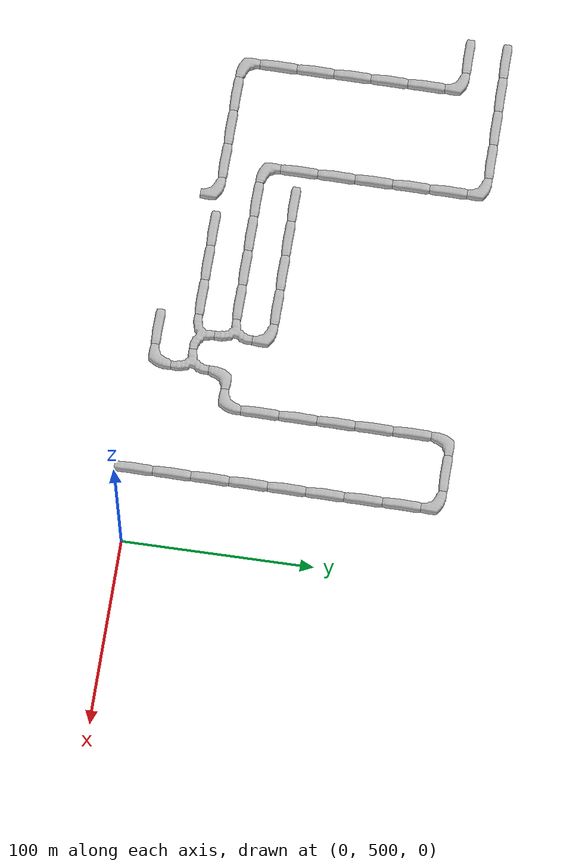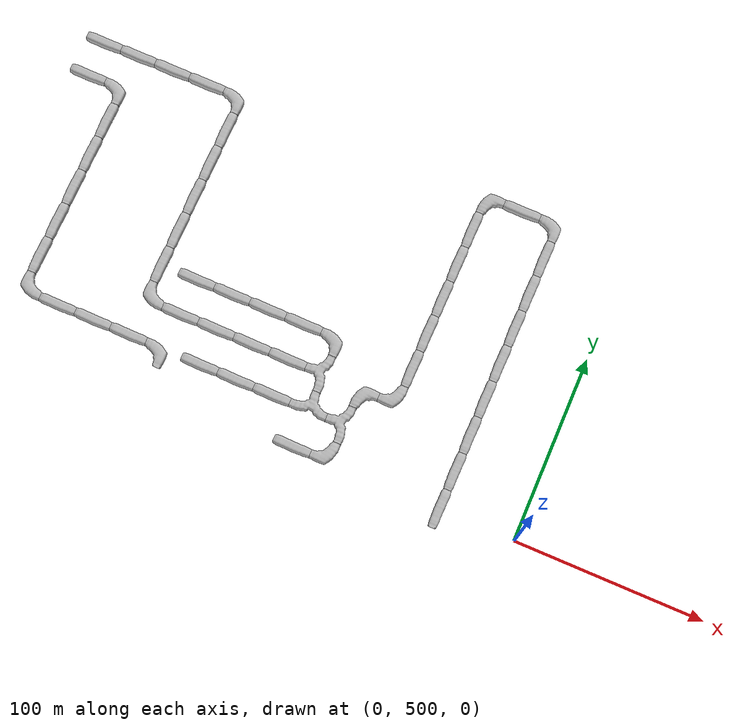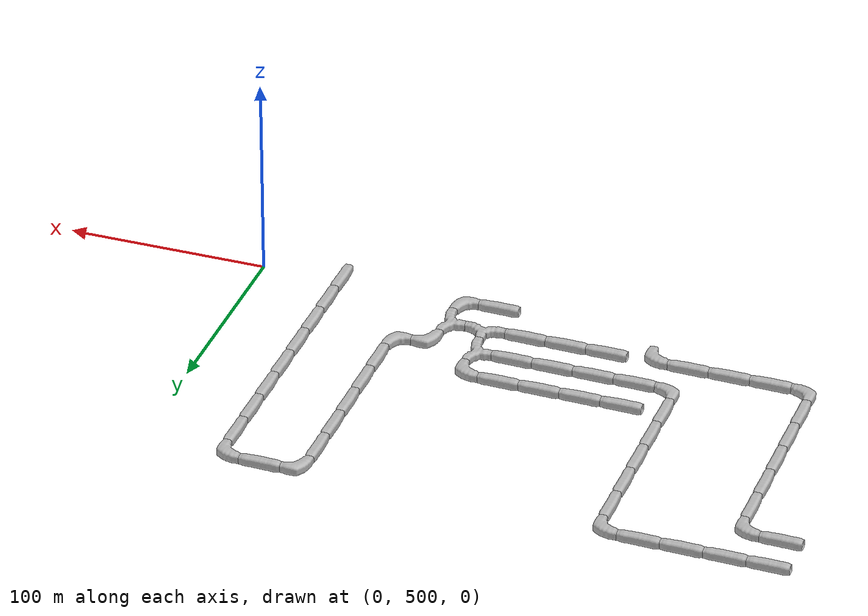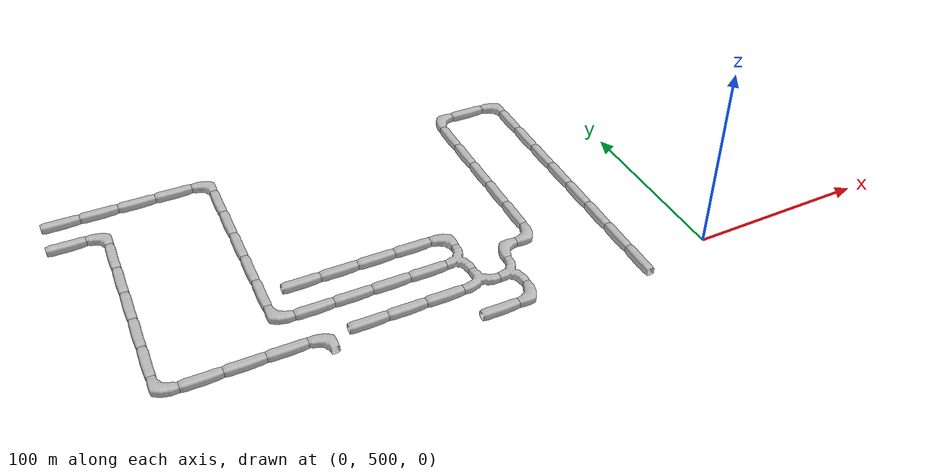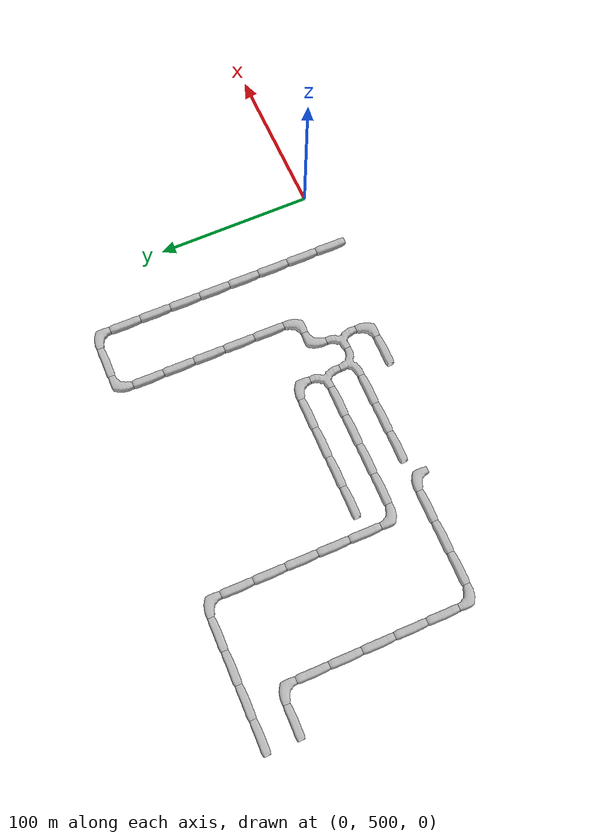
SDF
<sdf version="1.6">
 <world name="cave_32000_4">
  <include>
   <static>true</static>
   <name>cave_-10_26</name>
   <pose>-200 520 0 0 0 3.141592653589793</pose>
   <uri>model://cave_L_20m</uri>
  </include>
  <include>
   <static>true</static>
   <name>cave_-11_26</name>
   <pose>-220 520 0 0 0 1.5707963267948966</pose>
   <uri>model://cave_straight_20m</uri>
  </include>
  <include>
   <static>true</static>
   <name>cave_-12_26</name>
   <pose>-240 520 0 0 0 1.5707963267948966</pose>
   <uri>model://cave_straight_20m</uri>
  </include>
  <include>
   <static>true</static>
   <name>cave_-13_26</name>
   <pose>-260 520 0 0 0 1.5707963267948966</pose>
   <uri>model://cave_straight_20m</uri>
  </include>
  <include>
   <static>true</static>
   <name>cave_-14_26</name>
   <pose>-280 520 0 0 0 0.0</pose>
   <uri>model://cave_L_20m</uri>
  </include>
  <include>
   <static>true</static>
   <name>cave_-14_27</name>
   <pose>-280 540 0 0 0 0.0</pose>
   <uri>model://cave_straight_20m</uri>
  </include>
  <include>
   <static>true</static>
   <name>cave_-14_28</name>
   <pose>-280 560 0 0 0 0.0</pose>
   <uri>model://cave_straight_20m</uri>
  </include>
  <include>
   <static>true</static>
   <name>cave_-14_29</name>
   <pose>-280 580 0 0 0 0.0</pose>
   <uri>model://cave_straight_20m</uri>
  </include>
  <include>
   <static>true</static>
   <name>cave_-14_30</name>
   <pose>-280 600 0 0 0 0.0</pose>
   <uri>model://cave_straight_20m</uri>
  </include>
  <include>
   <static>true</static>
   <name>cave_-14_31</name>
   <pose>-280 620 0 0 0 0.0</pose>
   <uri>model://cave_straight_20m</uri>
  </include>
  <include>
   <static>true</static>
   <name>cave_-14_32</name>
   <pose>-280 640 0 0 0 3.141592653589793</pose>
   <uri>model://cave_L_20m</uri>
  </include>
  <include>
   <static>true</static>
   <name>cave_-15_32</name>
   <pose>-300 640 0 0 0 1.5707963267948966</pose>
   <uri>model://cave_straight_20m</uri>
  </include>
  <include>
   <static>true</static>
   <name>cave_-15_33</name>
   <pose>-300 660 0 0 0 1.5707963267948966</pose>
   <uri>model://cave_straight_20m</uri>
  </include>
  <include>
   <static>true</static>
   <name>cave_-14_33</name>
   <pose>-280 660 0 0 0 1.5707963267948966</pose>
   <uri>model://cave_straight_20m</uri>
  </include>
  <include>
   <static>true</static>
   <name>cave_-13_33</name>
   <pose>-260 660 0 0 0 1.5707963267948966</pose>
   <uri>model://cave_straight_20m</uri>
  </include>
  <include>
   <static>true</static>
   <name>cave_-12_33</name>
   <pose>-240 660 0 0 0 1.5707963267948966</pose>
   <uri>model://cave_straight_20m</uri>
  </include>
  <include>
   <static>true</static>
   <name>cave_-11_33</name>
   <pose>-220 660 0 0 0 3.141592653589793</pose>
   <uri>model://cave_L_20m</uri>
  </include>
  <include>
   <static>true</static>
   <name>cave_-11_32</name>
   <pose>-220 640 0 0 0 0.0</pose>
   <uri>model://cave_straight_20m</uri>
  </include>
  <include>
   <static>true</static>
   <name>cave_-11_31</name>
   <pose>-220 620 0 0 0 0.0</pose>
   <uri>model://cave_straight_20m</uri>
  </include>
  <include>
   <static>true</static>
   <name>cave_-11_30</name>
   <pose>-220 600 0 0 0 0.0</pose>
   <uri>model://cave_straight_20m</uri>
  </include>
  <include>
   <static>true</static>
   <name>cave_-11_29</name>
   <pose>-220 580 0 0 0 0.0</pose>
   <uri>model://cave_straight_20m</uri>
  </include>
  <include>
   <static>true</static>
   <name>cave_-11_28</name>
   <pose>-220 560 0 0 0 0.0</pose>
   <uri>model://cave_straight_20m</uri>
  </include>
  <include>
   <static>true</static>
   <name>cave_-11_27</name>
   <pose>-220 540 0 0 0 0.0</pose>
   <uri>model://cave_L_20m</uri>
  </include>
  <include>
   <static>true</static>
   <name>cave_-10_27</name>
   <pose>-200 540 0 0 0 1.5707963267948966</pose>
   <uri>model://cave_straight_20m</uri>
  </include>
  <include>
   <static>true</static>
   <name>cave_-9_27</name>
   <pose>-180 540 0 0 0 1.5707963267948966</pose>
   <uri>model://cave_straight_20m</uri>
  </include>
  <include>
   <static>true</static>
   <name>cave_-8_27</name>
   <pose>-160 540 0 0 0 1.5707963267948966</pose>
   <uri>model://cave_straight_20m</uri>
  </include>
  <include>
   <static>true</static>
   <name>cave_-7_27</name>
   <pose>-140 540 0 0 0 1.5707963267948966</pose>
   <uri>model://cave_straight_20m</uri>
  </include>
  <include>
   <static>true</static>
   <name>cave_-6_27</name>
   <pose>-120 540 0 0 0 1.5707963267948966</pose>
   <uri>model://cave_3way_20m</uri>
  </include>
  <include>
   <static>true</static>
   <name>cave_-6_26</name>
   <pose>-120 520 0 0 0 0.0</pose>
   <uri>model://cave_3way_20m</uri>
  </include>
  <include>
   <static>true</static>
   <name>cave_-5_26</name>
   <pose>-100 520 0 0 0 1.5707963267948966</pose>
   <uri>model://cave_3way_20m</uri>
  </include>
  <include>
   <static>true</static>
   <name>cave_-5_25</name>
   <pose>-100 500 0 0 0 1.5707963267948966</pose>
   <uri>model://cave_L_20m</uri>
  </include>
  <include>
   <static>true</static>
   <name>cave_-6_25</name>
   <pose>-120 500 0 0 0 1.5707963267948966</pose>
   <uri>model://cave_straight_20m</uri>
  </include>
  <include>
   <static>true</static>
   <name>cave_-5_27</name>
   <pose>-100 540 0 0 0 -1.5707963267948966</pose>
   <uri>model://cave_L_20m</uri>
  </include>
  <include>
   <static>true</static>
   <name>cave_-4_27</name>
   <pose>-80 540 0 0 0 1.5707963267948966</pose>
   <uri>model://cave_L_20m</uri>
  </include>
  <include>
   <static>true</static>
   <name>cave_-4_28</name>
   <pose>-80 560 0 0 0 0.0</pose>
   <uri>model://cave_straight_20m</uri>
  </include>
  <include>
   <static>true</static>
   <name>cave_-4_29</name>
   <pose>-80 580 0 0 0 0.0</pose>
   <uri>model://cave_straight_20m</uri>
  </include>
  <include>
   <static>true</static>
   <name>cave_-4_30</name>
   <pose>-80 600 0 0 0 0.0</pose>
   <uri>model://cave_straight_20m</uri>
  </include>
  <include>
   <static>true</static>
   <name>cave_-4_31</name>
   <pose>-80 620 0 0 0 0.0</pose>
   <uri>model://cave_straight_20m</uri>
  </include>
  <include>
   <static>true</static>
   <name>cave_-4_32</name>
   <pose>-80 640 0 0 0 0.0</pose>
   <uri>model://cave_straight_20m</uri>
  </include>
  <include>
   <static>true</static>
   <name>cave_-4_33</name>
   <pose>-80 660 0 0 0 -1.5707963267948966</pose>
   <uri>model://cave_L_20m</uri>
  </include>
  <include>
   <static>true</static>
   <name>cave_-3_33</name>
   <pose>-60 660 0 0 0 1.5707963267948966</pose>
   <uri>model://cave_straight_20m</uri>
  </include>
  <include>
   <static>true</static>
   <name>cave_-2_33</name>
   <pose>-40 660 0 0 0 3.141592653589793</pose>
   <uri>model://cave_L_20m</uri>
  </include>
  <include>
   <static>true</static>
   <name>cave_-2_32</name>
   <pose>-40 640 0 0 0 0.0</pose>
   <uri>model://cave_straight_20m</uri>
  </include>
  <include>
   <static>true</static>
   <name>cave_-2_31</name>
   <pose>-40 620 0 0 0 0.0</pose>
   <uri>model://cave_straight_20m</uri>
  </include>
  <include>
   <static>true</static>
   <name>cave_-2_30</name>
   <pose>-40 600 0 0 0 0.0</pose>
   <uri>model://cave_straight_20m</uri>
  </include>
  <include>
   <static>true</static>
   <name>cave_-2_29</name>
   <pose>-40 580 0 0 0 0.0</pose>
   <uri>model://cave_straight_20m</uri>
  </include>
  <include>
   <static>true</static>
   <name>cave_-2_28</name>
   <pose>-40 560 0 0 0 0.0</pose>
   <uri>model://cave_straight_20m</uri>
  </include>
  <include>
   <static>true</static>
   <name>cave_-2_27</name>
   <pose>-40 540 0 0 0 0.0</pose>
   <uri>model://cave_straight_20m</uri>
  </include>
  <include>
   <static>true</static>
   <name>cave_-2_26</name>
   <pose>-40 520 0 0 0 0.0</pose>
   <uri>model://cave_straight_20m</uri>
  </include>
  <include>
   <static>true</static>
   <name>cave_-2_25</name>
   <pose>-40 500 0 0 0 0.0</pose>
   <uri>model://cave_straight_20m</uri>
  </include>
  <include>
   <static>true</static>
   <name>cave_-7_26</name>
   <pose>-140 520 0 0 0 1.5707963267948966</pose>
   <uri>model://cave_straight_20m</uri>
  </include>
  <include>
   <static>true</static>
   <name>cave_-8_26</name>
   <pose>-160 520 0 0 0 1.5707963267948966</pose>
   <uri>model://cave_straight_20m</uri>
  </include>
  <include>
   <static>true</static>
   <name>cave_-9_26</name>
   <pose>-180 520 0 0 0 1.5707963267948966</pose>
   <uri>model://cave_straight_20m</uri>
  </include>
  <include>
   <static>true</static>
   <name>cave_-6_28</name>
   <pose>-120 560 0 0 0 3.141592653589793</pose>
   <uri>model://cave_L_20m</uri>
  </include>
  <include>
   <static>true</static>
   <name>cave_-7_28</name>
   <pose>-140 560 0 0 0 1.5707963267948966</pose>
   <uri>model://cave_straight_20m</uri>
  </include>
  <include>
   <static>true</static>
   <name>cave_-8_28</name>
   <pose>-160 560 0 0 0 1.5707963267948966</pose>
   <uri>model://cave_straight_20m</uri>
  </include>
  <include>
   <static>true</static>
   <name>cave_-9_28</name>
   <pose>-180 560 0 0 0 1.5707963267948966</pose>
   <uri>model://cave_straight_20m</uri>
  </include>
  <include>
   <static>true</static>
   <name>cave_-10_28</name>
   <pose>-200 560 0 0 0 1.5707963267948966</pose>
   <uri>model://cave_straight_20m</uri>
  </include>
 </world>
</sdf>
